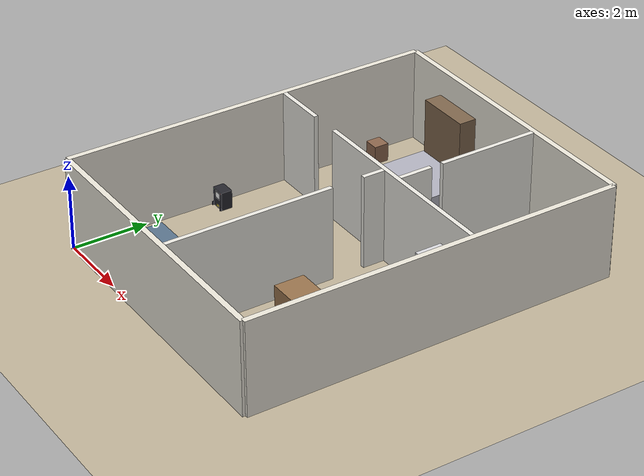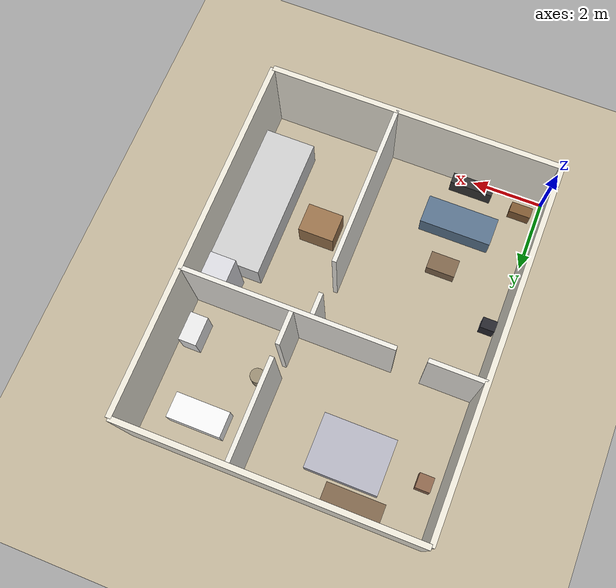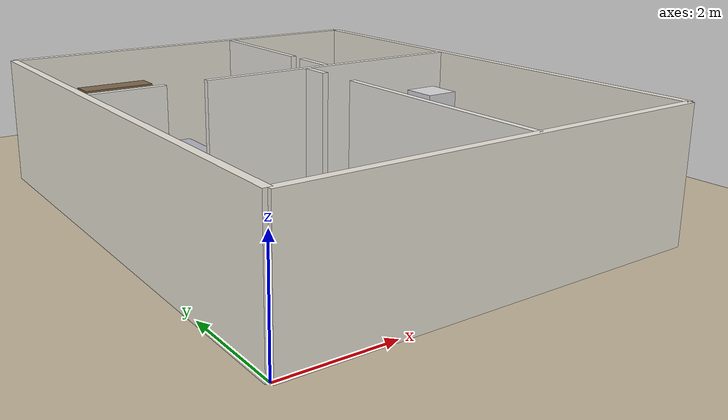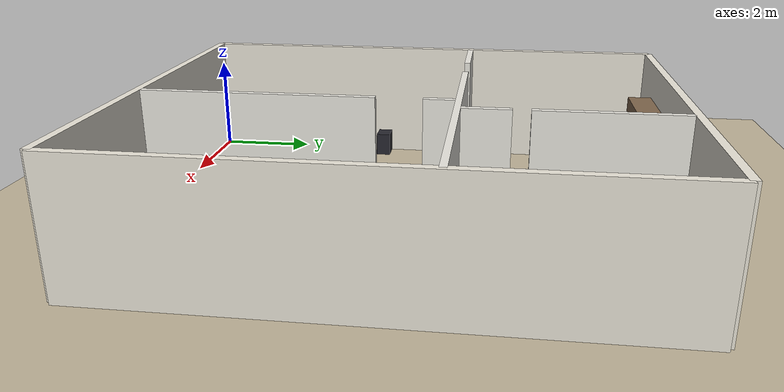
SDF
<?xml version="1.0" ?>
<!-- SPDX-License-Identifier: Apache-2.0 -->
<!-- Residential apartment for navigation testing.
     8m x 10m floor plan with narrow hallways, doorways, and furnished rooms. -->
<sdf version="1.9">
  <world name="apartment">
    <physics name="1ms" type="ignored">
      <max_step_size>0.001</max_step_size>
      <real_time_factor>1.0</real_time_factor>
    </physics>

    <plugin filename="gz-sim-physics-system" name="gz::sim::systems::Physics"/>
    <plugin filename="gz-sim-scene-broadcaster-system" name="gz::sim::systems::SceneBroadcaster"/>
    <plugin filename="gz-sim-sensors-system" name="gz::sim::systems::Sensors">
      <render_engine>ogre</render_engine>
    </plugin>
    <plugin filename="gz-sim-user-commands-system" name="gz::sim::systems::UserCommands"/>

    <light type="directional" name="sun">
      <cast_shadows>true</cast_shadows>
      <pose>0 0 10 0 0 0</pose>
      <diffuse>0.8 0.8 0.8 1</diffuse>
      <specular>0.2 0.2 0.2 1</specular>
      <direction>-0.5 0.1 -0.9</direction>
    </light>

    <!-- Ground plane -->
    <model name="ground_plane">
      <static>true</static>
      <link name="link">
        <collision name="collision">
          <geometry><plane><normal>0 0 1</normal><size>8 10</size></plane></geometry>
        </collision>
        <visual name="visual">
          <geometry><plane><normal>0 0 1</normal><size>8 10</size></plane></geometry>
          <material>
            <ambient>0.75 0.7 0.6 1</ambient>
            <diffuse>0.75 0.7 0.6 1</diffuse>
          </material>
        </visual>
      </link>
    </model>

    <!-- Outer walls (8m x 10m, 0.15m thick, 2.5m tall) -->
    <model name="wall_north">
      <static>true</static>
      <pose>4 10 1.25 0 0 0</pose>
      <link name="link">
        <collision name="collision">
          <geometry><box><size>8 0.15 2.5</size></box></geometry>
        </collision>
        <visual name="visual">
          <geometry><box><size>8 0.15 2.5</size></box></geometry>
          <material><ambient>0.92 0.9 0.85 1</ambient><diffuse>0.92 0.9 0.85 1</diffuse></material>
        </visual>
      </link>
    </model>

    <model name="wall_south">
      <static>true</static>
      <pose>4 0 1.25 0 0 0</pose>
      <link name="link">
        <collision name="collision">
          <geometry><box><size>8 0.15 2.5</size></box></geometry>
        </collision>
        <visual name="visual">
          <geometry><box><size>8 0.15 2.5</size></box></geometry>
          <material><ambient>0.92 0.9 0.85 1</ambient><diffuse>0.92 0.9 0.85 1</diffuse></material>
        </visual>
      </link>
    </model>

    <model name="wall_west">
      <static>true</static>
      <pose>0 5 1.25 0 0 0</pose>
      <link name="link">
        <collision name="collision">
          <geometry><box><size>0.15 10 2.5</size></box></geometry>
        </collision>
        <visual name="visual">
          <geometry><box><size>0.15 10 2.5</size></box></geometry>
          <material><ambient>0.92 0.9 0.85 1</ambient><diffuse>0.92 0.9 0.85 1</diffuse></material>
        </visual>
      </link>
    </model>

    <model name="wall_east">
      <static>true</static>
      <pose>8 5 1.25 0 0 0</pose>
      <link name="link">
        <collision name="collision">
          <geometry><box><size>0.15 10 2.5</size></box></geometry>
        </collision>
        <visual name="visual">
          <geometry><box><size>0.15 10 2.5</size></box></geometry>
          <material><ambient>0.92 0.9 0.85 1</ambient><diffuse>0.92 0.9 0.85 1</diffuse></material>
        </visual>
      </link>
    </model>

    <!-- Hallway wall (east-west, separates living area from bedrooms) -->
    <!-- Left section: x=0 to x=1.5 -->
    <model name="hallway_wall_left">
      <static>true</static>
      <pose>0.75 6 1.25 0 0 0</pose>
      <link name="link">
        <collision name="collision">
          <geometry><box><size>1.5 0.12 2.5</size></box></geometry>
        </collision>
        <visual name="visual">
          <geometry><box><size>1.5 0.12 2.5</size></box></geometry>
          <material><ambient>0.92 0.91 0.88 1</ambient><diffuse>0.92 0.91 0.88 1</diffuse></material>
        </visual>
      </link>
    </model>

    <!-- Door gap at x=1.5 to x=2.3 (0.8m) -->

    <!-- Right section: x=2.3 to x=8 -->
    <model name="hallway_wall_right">
      <static>true</static>
      <pose>5.15 6 1.25 0 0 0</pose>
      <link name="link">
        <collision name="collision">
          <geometry><box><size>5.7 0.12 2.5</size></box></geometry>
        </collision>
        <visual name="visual">
          <geometry><box><size>5.7 0.12 2.5</size></box></geometry>
          <material><ambient>0.92 0.91 0.88 1</ambient><diffuse>0.92 0.91 0.88 1</diffuse></material>
        </visual>
      </link>
    </model>

    <!-- Bedroom partition (north-south, separates bedroom from bathroom) -->
    <!-- Top section: y=6 to y=8.5 -->
    <model name="bedroom_wall_top">
      <static>true</static>
      <pose>5 8.6 1.25 0 0 0</pose>
      <link name="link">
        <collision name="collision">
          <geometry><box><size>0.12 2.68 2.5</size></box></geometry>
        </collision>
        <visual name="visual">
          <geometry><box><size>0.12 2.68 2.5</size></box></geometry>
          <material><ambient>0.92 0.91 0.88 1</ambient><diffuse>0.92 0.91 0.88 1</diffuse></material>
        </visual>
      </link>
    </model>

    <!-- Door gap y=8.5 to y=9.3 (0.8m) is above hallway_wall for bathroom entry -->

    <!-- Bottom section: connects hallway_wall to bedroom wall -->
    <model name="bedroom_wall_bottom">
      <static>true</static>
      <pose>5 6.5 1.25 0 0 0</pose>
      <link name="link">
        <collision name="collision">
          <geometry><box><size>0.12 0.88 2.5</size></box></geometry>
        </collision>
        <visual name="visual">
          <geometry><box><size>0.12 0.88 2.5</size></box></geometry>
          <material><ambient>0.92 0.91 0.88 1</ambient><diffuse>0.92 0.91 0.88 1</diffuse></material>
        </visual>
      </link>
    </model>

    <!-- Kitchen partition (north-south, separates kitchen from living room) -->
    <!-- Section: y=0 to y=4.5 -->
    <model name="kitchen_wall">
      <static>true</static>
      <pose>4.5 2.25 1.25 0 0 0</pose>
      <link name="link">
        <collision name="collision">
          <geometry><box><size>0.12 4.5 2.5</size></box></geometry>
        </collision>
        <visual name="visual">
          <geometry><box><size>0.12 4.5 2.5</size></box></geometry>
          <material><ambient>0.92 0.91 0.88 1</ambient><diffuse>0.92 0.91 0.88 1</diffuse></material>
        </visual>
      </link>
    </model>

    <!-- Kitchen wall upper (with counter pass-through gap y=4.5 to y=5.3) -->
    <model name="kitchen_wall_upper">
      <static>true</static>
      <pose>4.5 5.65 1.25 0 0 0</pose>
      <link name="link">
        <collision name="collision">
          <geometry><box><size>0.12 0.58 2.5</size></box></geometry>
        </collision>
        <visual name="visual">
          <geometry><box><size>0.12 0.58 2.5</size></box></geometry>
          <material><ambient>0.92 0.91 0.88 1</ambient><diffuse>0.92 0.91 0.88 1</diffuse></material>
        </visual>
      </link>
    </model>

    <!-- Furniture: Living room -->
    <!-- Sofa (2.0m x 0.8m x 0.6m) -->
    <model name="sofa">
      <static>true</static>
      <pose>2 1.5 0.3 0 0 0</pose>
      <link name="link">
        <collision name="collision">
          <geometry><box><size>2.0 0.8 0.6</size></box></geometry>
        </collision>
        <visual name="visual">
          <geometry><box><size>2.0 0.8 0.6</size></box></geometry>
          <material><ambient>0.35 0.45 0.55 1</ambient><diffuse>0.35 0.45 0.55 1</diffuse></material>
        </visual>
      </link>
    </model>

    <!-- Coffee table (0.8m x 0.5m x 0.4m) -->
    <model name="coffee_table">
      <static>true</static>
      <pose>2 2.8 0.2 0 0 0</pose>
      <link name="link">
        <collision name="collision">
          <geometry><box><size>0.8 0.5 0.4</size></box></geometry>
        </collision>
        <visual name="visual">
          <geometry><box><size>0.8 0.5 0.4</size></box></geometry>
          <material><ambient>0.5 0.4 0.3 1</ambient><diffuse>0.5 0.4 0.3 1</diffuse></material>
        </visual>
      </link>
    </model>

    <!-- TV stand (1.2m x 0.3m x 0.5m) against south wall -->
    <model name="tv_stand">
      <static>true</static>
      <pose>2 0.3 0.25 0 0 0</pose>
      <link name="link">
        <collision name="collision">
          <geometry><box><size>1.2 0.3 0.5</size></box></geometry>
        </collision>
        <visual name="visual">
          <geometry><box><size>1.2 0.3 0.5</size></box></geometry>
          <material><ambient>0.2 0.2 0.2 1</ambient><diffuse>0.2 0.2 0.2 1</diffuse></material>
        </visual>
      </link>
    </model>

    <!-- Furniture: Kitchen -->
    <!-- Kitchen counter (along east wall) -->
    <model name="kitchen_counter">
      <static>true</static>
      <pose>7.2 3 0.45 0 0 0</pose>
      <link name="link">
        <collision name="collision">
          <geometry><box><size>1.4 4.0 0.9</size></box></geometry>
        </collision>
        <visual name="visual">
          <geometry><box><size>1.4 4.0 0.9</size></box></geometry>
          <material><ambient>0.8 0.8 0.8 1</ambient><diffuse>0.8 0.8 0.8 1</diffuse></material>
        </visual>
      </link>
    </model>

    <!-- Refrigerator (against north-east corner of kitchen) -->
    <model name="refrigerator">
      <static>true</static>
      <pose>7.3 5.5 0.9 0 0 0</pose>
      <link name="link">
        <collision name="collision">
          <geometry><box><size>0.7 0.7 1.8</size></box></geometry>
        </collision>
        <visual name="visual">
          <geometry><box><size>0.7 0.7 1.8</size></box></geometry>
          <material><ambient>0.85 0.85 0.87 1</ambient><diffuse>0.85 0.85 0.87 1</diffuse></material>
        </visual>
      </link>
    </model>

    <!-- Dining table (kitchen area) -->
    <model name="dining_table">
      <static>true</static>
      <pose>5.5 3 0.375 0 0 0</pose>
      <link name="link">
        <collision name="collision">
          <geometry><box><size>1.0 0.8 0.75</size></box></geometry>
        </collision>
        <visual name="visual">
          <geometry><box><size>1.0 0.8 0.75</size></box></geometry>
          <material><ambient>0.6 0.45 0.3 1</ambient><diffuse>0.6 0.45 0.3 1</diffuse></material>
        </visual>
      </link>
    </model>

    <!-- Furniture: Bedroom (north-west area, y>6, x<5) -->
    <!-- Bed (2.0m x 1.5m x 0.5m) -->
    <model name="bed">
      <static>true</static>
      <pose>2.5 8.5 0.25 0 0 0</pose>
      <link name="link">
        <collision name="collision">
          <geometry><box><size>2.0 1.5 0.5</size></box></geometry>
        </collision>
        <visual name="visual">
          <geometry><box><size>2.0 1.5 0.5</size></box></geometry>
          <material><ambient>0.7 0.7 0.75 1</ambient><diffuse>0.7 0.7 0.75 1</diffuse></material>
        </visual>
      </link>
    </model>

    <!-- Nightstand -->
    <model name="nightstand">
      <static>true</static>
      <pose>0.5 8.5 0.25 0 0 0</pose>
      <link name="link">
        <collision name="collision">
          <geometry><box><size>0.4 0.4 0.5</size></box></geometry>
        </collision>
        <visual name="visual">
          <geometry><box><size>0.4 0.4 0.5</size></box></geometry>
          <material><ambient>0.55 0.4 0.3 1</ambient><diffuse>0.55 0.4 0.3 1</diffuse></material>
        </visual>
      </link>
    </model>

    <!-- Wardrobe (against north wall in bedroom) -->
    <model name="wardrobe">
      <static>true</static>
      <pose>2 9.7 0.9 0 0 0</pose>
      <link name="link">
        <collision name="collision">
          <geometry><box><size>1.5 0.5 1.8</size></box></geometry>
        </collision>
        <visual name="visual">
          <geometry><box><size>1.5 0.5 1.8</size></box></geometry>
          <material><ambient>0.5 0.4 0.3 1</ambient><diffuse>0.5 0.4 0.3 1</diffuse></material>
        </visual>
      </link>
    </model>

    <!-- Furniture: Bathroom (north-east area, y>6, x>5) -->
    <!-- Bathtub -->
    <model name="bathtub">
      <static>true</static>
      <pose>6.5 9 0.3 0 0 0</pose>
      <link name="link">
        <collision name="collision">
          <geometry><box><size>1.5 0.7 0.6</size></box></geometry>
        </collision>
        <visual name="visual">
          <geometry><box><size>1.5 0.7 0.6</size></box></geometry>
          <material><ambient>0.95 0.95 0.95 1</ambient><diffuse>0.95 0.95 0.95 1</diffuse></material>
        </visual>
      </link>
    </model>

    <!-- Sink cabinet -->
    <model name="sink_cabinet">
      <static>true</static>
      <pose>7.5 7 0.4 0 0 0</pose>
      <link name="link">
        <collision name="collision">
          <geometry><box><size>0.5 0.8 0.8</size></box></geometry>
        </collision>
        <visual name="visual">
          <geometry><box><size>0.5 0.8 0.8</size></box></geometry>
          <material><ambient>0.9 0.9 0.9 1</ambient><diffuse>0.9 0.9 0.9 1</diffuse></material>
        </visual>
      </link>
    </model>

    <!-- Dynamic obstacles -->
    <!-- Shoes rack (moveable, near entrance) -->
    <model name="shoe_rack">
      <static>false</static>
      <pose>0.5 0.5 0.2 0 0 0</pose>
      <link name="link">
        <inertial>
          <mass>3.0</mass>
          <inertia><ixx>0.03</ixx><iyy>0.03</iyy><izz>0.02</izz></inertia>
        </inertial>
        <collision name="collision">
          <geometry><box><size>0.6 0.3 0.4</size></box></geometry>
        </collision>
        <visual name="visual">
          <geometry><box><size>0.6 0.3 0.4</size></box></geometry>
          <material><ambient>0.5 0.35 0.2 1</ambient><diffuse>0.5 0.35 0.2 1</diffuse></material>
        </visual>
      </link>
    </model>

    <!-- Laundry basket (bathroom) -->
    <model name="laundry_basket">
      <static>false</static>
      <pose>5.5 7.5 0.25 0 0 0.4</pose>
      <link name="link">
        <inertial>
          <mass>2.0</mass>
          <inertia><ixx>0.02</ixx><iyy>0.02</iyy><izz>0.01</izz></inertia>
        </inertial>
        <collision name="collision">
          <geometry><cylinder><radius>0.2</radius><length>0.5</length></cylinder></geometry>
        </collision>
        <visual name="visual">
          <geometry><cylinder><radius>0.2</radius><length>0.5</length></cylinder></geometry>
          <material><ambient>0.6 0.55 0.45 1</ambient><diffuse>0.6 0.55 0.45 1</diffuse></material>
        </visual>
      </link>
    </model>

    <!-- Charging dock (living room, against west wall) -->
    <include>
      <uri>model://charging_dock</uri>
      <name>charging_dock_1</name>
      <pose>0.3 4 0 0 0 0</pose>
    </include>

  </world>
</sdf>

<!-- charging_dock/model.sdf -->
<!-- SPDX-License-Identifier: Apache-2.0 -->
<sdf version="1.9">
  <model name="charging_dock">
    <static>true</static>

    <!-- Dock body -->
    <link name="dock_body">
      <pose>0 0 0.25 0 0 0</pose>
      <collision name="collision">
        <geometry><box><size>0.4 0.3 0.5</size></box></geometry>
      </collision>
      <visual name="body_visual">
        <geometry><box><size>0.4 0.3 0.5</size></box></geometry>
        <material>
          <ambient>0.15 0.15 0.18 1</ambient>
          <diffuse>0.15 0.15 0.18 1</diffuse>
          <specular>0.3 0.3 0.3 1</specular>
        </material>
      </visual>
    </link>

    <!-- AprilTag marker face (front-facing, z=0.35m height) -->
    <link name="apriltag_marker">
      <pose>0 -0.151 0.35 0 0 0</pose>
      <visual name="tag_visual">
        <geometry><box><size>0.16 0.001 0.16</size></box></geometry>
        <material>
          <ambient>1.0 1.0 1.0 1</ambient>
          <diffuse>1.0 1.0 1.0 1</diffuse>
        </material>
      </visual>
    </link>

    <!-- AprilTag black border (slightly larger) -->
    <link name="apriltag_border">
      <pose>0 -0.1505 0.35 0 0 0</pose>
      <visual name="border_visual">
        <geometry><box><size>0.20 0.001 0.20</size></box></geometry>
        <material>
          <ambient>0.0 0.0 0.0 1</ambient>
          <diffuse>0.0 0.0 0.0 1</diffuse>
        </material>
      </visual>
    </link>

    <!-- Pogo pin contact plate (bottom front) -->
    <link name="contact_plate">
      <pose>0 -0.14 0.06 0 0 0</pose>
      <collision name="collision">
        <geometry><box><size>0.12 0.02 0.08</size></box></geometry>
      </collision>
      <visual name="contact_visual">
        <geometry><box><size>0.12 0.02 0.08</size></box></geometry>
        <material>
          <ambient>0.8 0.7 0.2 1</ambient>
          <diffuse>0.8 0.7 0.2 1</diffuse>
          <specular>0.9 0.9 0.5 1</specular>
        </material>
      </visual>
    </link>

    <!-- LED indicator left (green) -->
    <link name="led_green">
      <pose>-0.15 -0.151 0.46 0 0 0</pose>
      <visual name="led_visual">
        <geometry><sphere><radius>0.01</radius></sphere></geometry>
        <material>
          <ambient>0.0 0.8 0.0 1</ambient>
          <diffuse>0.0 1.0 0.0 1</diffuse>
          <emissive>0.0 0.6 0.0 1</emissive>
        </material>
      </visual>
    </link>

    <!-- LED indicator right (red) -->
    <link name="led_red">
      <pose>0.15 -0.151 0.46 0 0 0</pose>
      <visual name="led_visual">
        <geometry><sphere><radius>0.01</radius></sphere></geometry>
        <material>
          <ambient>0.8 0.0 0.0 1</ambient>
          <diffuse>1.0 0.0 0.0 1</diffuse>
          <emissive>0.6 0.0 0.0 1</emissive>
        </material>
      </visual>
    </link>

    <!-- Guide rails for alignment -->
    <link name="guide_left">
      <pose>-0.18 -0.10 0.05 0 0 0</pose>
      <collision name="collision">
        <geometry><box><size>0.02 0.20 0.10</size></box></geometry>
      </collision>
      <visual name="visual">
        <geometry><box><size>0.02 0.20 0.10</size></box></geometry>
        <material>
          <ambient>0.3 0.3 0.35 1</ambient>
          <diffuse>0.3 0.3 0.35 1</diffuse>
        </material>
      </visual>
    </link>

    <link name="guide_right">
      <pose>0.18 -0.10 0.05 0 0 0</pose>
      <collision name="collision">
        <geometry><box><size>0.02 0.20 0.10</size></box></geometry>
      </collision>
      <visual name="visual">
        <geometry><box><size>0.02 0.20 0.10</size></box></geometry>
        <material>
          <ambient>0.3 0.3 0.35 1</ambient>
          <diffuse>0.3 0.3 0.35 1</diffuse>
        </material>
      </visual>
    </link>

    <!-- Fixed joints to connect all links -->
    <joint name="tag_joint" type="fixed">
      <parent>dock_body</parent>
      <child>apriltag_marker</child>
    </joint>
    <joint name="border_joint" type="fixed">
      <parent>dock_body</parent>
      <child>apriltag_border</child>
    </joint>
    <joint name="contact_joint" type="fixed">
      <parent>dock_body</parent>
      <child>contact_plate</child>
    </joint>
    <joint name="led_green_joint" type="fixed">
      <parent>dock_body</parent>
      <child>led_green</child>
    </joint>
    <joint name="led_red_joint" type="fixed">
      <parent>dock_body</parent>
      <child>led_red</child>
    </joint>
    <joint name="guide_left_joint" type="fixed">
      <parent>dock_body</parent>
      <child>guide_left</child>
    </joint>
    <joint name="guide_right_joint" type="fixed">
      <parent>dock_body</parent>
      <child>guide_right</child>
    </joint>
  </model>
</sdf>
